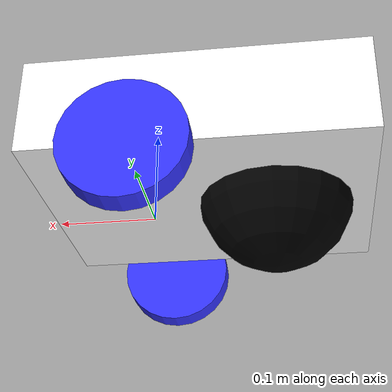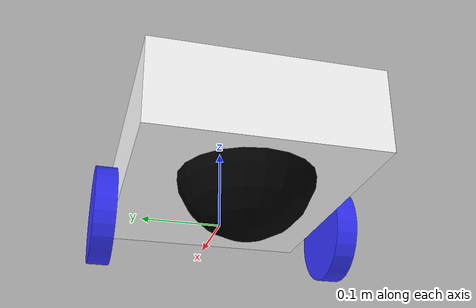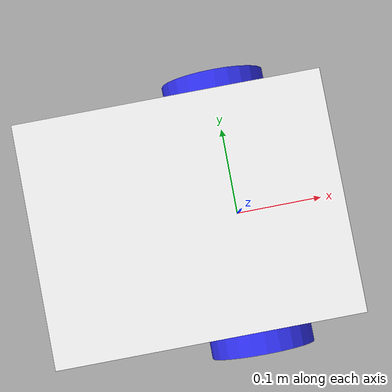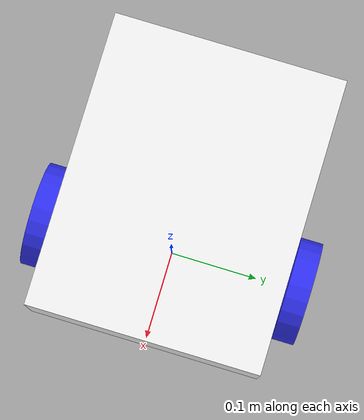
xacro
<?xml version="1.0"?>
<robot xmlns:xacro="http://www.ros.org/wiki/xacro"  name="robot">

    <xacro:include filename="inertial_macros.xacro"/>

    <!-- Color def -->
    <material name="white">
        <color rgba="1 1 1 1" />
    </material>
    <material name="orange">
        <color rgba="1 0.3 0.1 1"/>
    </material>

    <material name="blue">
        <color rgba="0.2 0.2 1 1"/>
    </material>

    <material name="black">
        <color rgba="0 0 0 1"/>
    </material>
    <material name="red">
        <color rgba="1 0 0 1"/>
    </material>
    <!--Structure data-->
    <xacro:property name="chassis_mass" value="10.0"/>
    <xacro:property name="chassis_lenght" value="0.335"/>
    <xacro:property name="chassis_width" value="0.265"/>
    <xacro:property name="chassis_height" value="0.1"/>
    <xacro:property name="wheel_mass" value="0.5"/>
    <xacro:property name="wheel_radius" value="0.06"/>
    <xacro:property name="wheel_thickness" value="0.026"/>
    <xacro:property name="wheel_position_x" value="0.226"/>
    <xacro:property name="wheel_position_y" value="0.1485"/>
    <xacro:property name="wheel_position_z" value="0.01"/>
    <xacro:property name="caster_wheel_mass" value="0.05"/>
    <xacro:property name="caster_wheel_radius" value="0.08" />
    <xacro:property name="caster_wheel_position_x" value="0.1"/>

    <xacro:property name="caster_wheel_position_z" value="${caster_wheel_radius - wheel_radius - wheel_position_z}"/>

    <!--  BASE LINK-->

    <link name="base_link">

    </link>

    <!--  CHASSIS LINK-->

    <joint name="chassis_joint" type="fixed">
        <parent link="base_link"/>
        <child link="chassis"/>
        <origin xyz="${-wheel_position_x} 0 ${wheel_position_z}"/>
    </joint>

    <link name="chassis">
        <visual>
            <origin xyz="${chassis_lenght/2} 0 ${chassis_height/2}" rpy="0 0 0"/>
            <geometry>
                <box size="${chassis_lenght} ${chassis_width} ${chassis_height}"/>
            </geometry>
            <material name="white"/>
        </visual>
        <collision>
            <origin xyz="${chassis_lenght/2} 0 ${chassis_height/2}" rpy="0 0 0"/>
            <geometry>
                <box size="${chassis_lenght} ${chassis_width} ${chassis_height}"/>
            </geometry>
        </collision>
        <xacro:inertial_box mass="${chassis_mass}" x="${chassis_lenght}" y="${chassis_width}" z="${chassis_height}">
            <origin xyz="${chassis_lenght/2} 0 ${chassis_height/2}" rpy ="0 0 0"/>
        </xacro:inertial_box>
    </link>

    <gazebo reference="chassis">
        <material>Gazebo/White</material>

    </gazebo>

    <xacro:macro name="wheel" params="prefix">

        <link name="${prefix}_wheel">
            <visual>
                <geometry>
                    <cylinder length="${wheel_thickness}" radius="${wheel_radius}" />
                </geometry>
                <material name="blue"/>
            </visual>
            <collision>
                <geometry>
                    <sphere radius="${wheel_radius}" />
                </geometry>
            </collision>
            <xacro:inertial_cylinder mass="${wheel_mass}" length="${wheel_thickness}" radius="${wheel_radius}" >
                <origin xyz="0 0 0" rpy="0 0 0"/>
            </xacro:inertial_cylinder>
        </link>
        <gazebo reference="${prefix}_wheel">
            <mu1>0.2</mu1>
            <mu2>0.2</mu2>
            <material>Gazebo/Blue</material>
        </gazebo>

    </xacro:macro>

    <!-- LEFT WHEEL -->
    <joint name="left_wheel_joint" type="continuous">
            <parent link="base_link"/>
            <child link="left_wheel"/>
            <origin xyz="0 ${wheel_position_y} 0" rpy="-${pi/2} 0 0"/>
            <axis xyz="0 0 1"/>
            <dynamics damping="10000.0" friction="1000.0"/>
            <limit effort="10000" velocity="10"/>
    </joint>
    <xacro:wheel prefix="left" />

    <!-- RIGHT WHEEL -->
    <joint name="right_wheel_joint" type="continuous">
            <parent link="base_link"/>
            <child link="right_wheel"/>
            <origin xyz="0 ${-wheel_position_y} 0" rpy="${pi/2} 0 0"/>
            <axis xyz="0 0 -1"/>
            <dynamics damping="10000.0" friction="1000.0"/>
            <limit effort="10000" velocity="10"/>
    </joint>
    <xacro:wheel prefix="right" />

    <!-- CASTER WHEEL -->

    <joint name="caster_wheel_joint" type="fixed">
        <parent link="chassis"/>
        <child link="caster_wheel"/>
        <origin xyz="${caster_wheel_position_x} 0 ${caster_wheel_position_z}"/>

    </joint>

    <link name="caster_wheel">
        <visual>
            <geometry>
                <sphere radius="${caster_wheel_radius}"/>
            </geometry>
            <material name="black"/>
        </visual>
        <collision>
            <geometry>
                <sphere radius="${caster_wheel_radius}"/>
            </geometry>
        </collision>
        <xacro:inertial_sphere mass="${caster_wheel_mass}" radius="${caster_wheel_radius}">
            <origin xyz="0 0 0" rpy="0 0 0"/>
        </xacro:inertial_sphere>
    </link>
    <gazebo reference="caster_wheel">
        <mu1>0.02</mu1>
        <mu2>0.02</mu2>
        <material>Gazebo/Black</material>
    </gazebo>

</robot>
